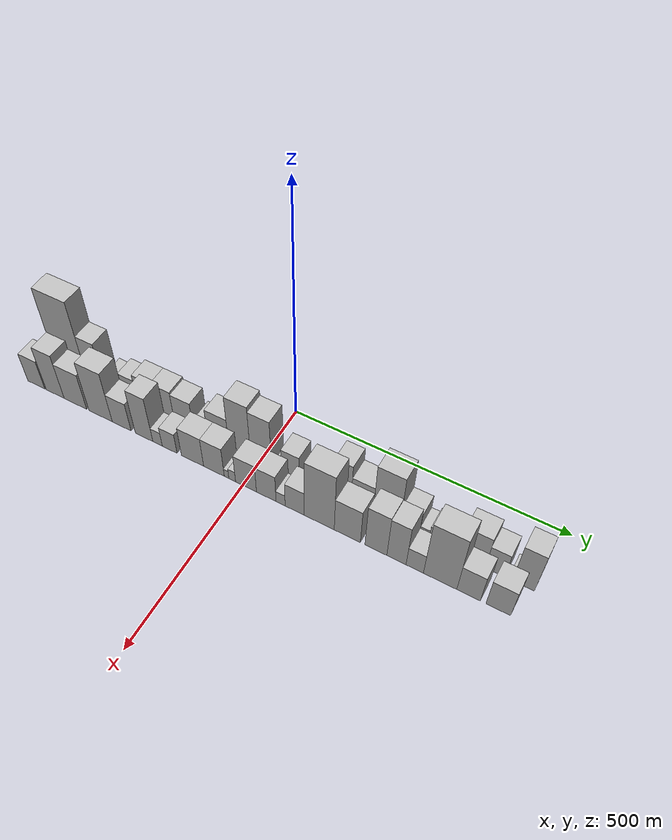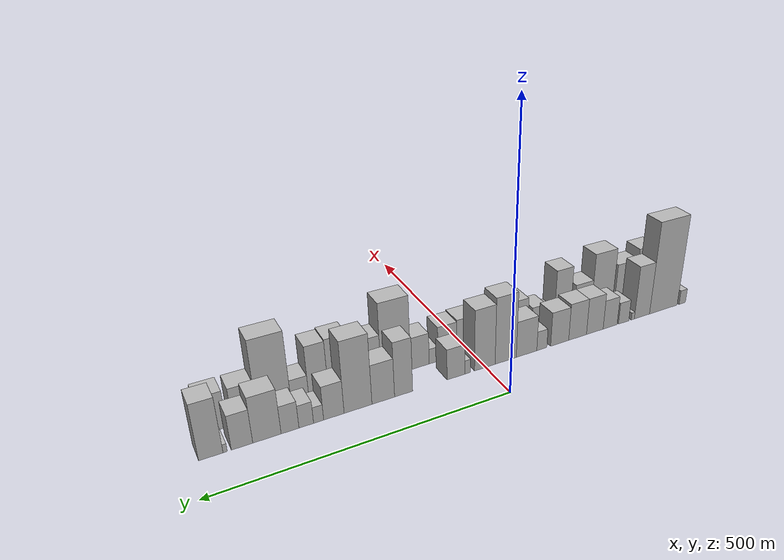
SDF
<sdf version="1.6">
 <world name="default">
  <scene>
   <sky><clouds><speed>12</speed></clouds></sky>
   <ambient>0.4 0.4 0.4 1</ambient>
   <background>0.7 0.7 0.7 1</background>
   <shadows>1</shadows>
  </scene>
  <gravity>0 0 -9.8066</gravity>
  <magnetic_field>6e-06 2.3e-05 -4.2e-05</magnetic_field>
  <physics default="0" name="default_physics" type="ode">
   <ode>
    <solver>
     <type>quick</type>
     <iters>10</iters>
     <sor>1.0</sor>
     <use_dynamic_moi_rescaling>0</use_dynamic_moi_rescaling>
    </solver>
    <constraints>
     <cfm>0</cfm>
     <erp>0.2</erp>
     <contact_max_correcting_vel>100</contact_max_correcting_vel>
     <contact_surface_layer>0.001</contact_surface_layer>
    </constraints>
   </ode>
   <max_step_size>0.004</max_step_size>
   <real_time_factor>1</real_time_factor>
   <real_time_update_rate>250</real_time_update_rate>
  </physics>
  <light name="sun" type="directional">
   <pose>0 0 10 0 0 0</pose>
   <diffuse>0.8 0.8 0.8 1</diffuse>
   <specular>0.2 0.2 0.2 1</specular>
   <attenuation>
    <range>1000</range>
    <constant>0.9</constant>
    <linear>0.01</linear>
    <quadratic>0.001</quadratic>
   </attenuation>
   <direction>-0.5 0.1 -0.9</direction>
  </light>
  <model name="building_1">
   <static>1</static>
   <pose>100.0000 -441.8809 0 0.000000 0.000000 0.000000</pose>
   <link name="link">
    <pose>0 0 15.00 0 0 0</pose>
    <collision name="collision"><geometry><box><size>40.0000 16.2383 30.0000</size></box></geometry></collision>
    <visual name="visual">
     <cast_shadows>0</cast_shadows>
     <geometry><box><size>40.0000 16.2383 30.0000</size></box></geometry>
     <material>
      <script>
       <uri>model://HANNAS_wall/materials/scripts</uri>
       <uri>model://HANNAS_wall/materials/textures</uri>
       <name>vrc/HANNAS_wall</name>
      </script>
     </material>
    </visual>
   </link>
  </model>
  <model name="building_2">
   <static>1</static>
   <pose>100.0000 -394.4382 0 0.000000 0.000000 0.000000</pose>
   <link name="link">
    <pose>0 0 96.00 0 0 0</pose>
    <collision name="collision"><geometry><box><size>40.0000 68.6470 192.0000</size></box></geometry></collision>
    <visual name="visual">
     <cast_shadows>0</cast_shadows>
     <geometry><box><size>40.0000 68.6470 192.0000</size></box></geometry>
     <material>
      <script>
       <uri>model://HANNAS_wall/materials/scripts</uri>
       <uri>model://HANNAS_wall/materials/textures</uri>
       <name>vrc/HANNAS_wall</name>
      </script>
     </material>
    </visual>
   </link>
  </model>
  <model name="building_3">
   <static>1</static>
   <pose>100.0000 -341.8389 0 0.000000 0.000000 0.000000</pose>
   <link name="link">
    <pose>0 0 55.50 0 0 0</pose>
    <collision name="collision"><geometry><box><size>40.0000 36.5518 111.0000</size></box></geometry></collision>
    <visual name="visual">
     <cast_shadows>0</cast_shadows>
     <geometry><box><size>40.0000 36.5518 111.0000</size></box></geometry>
     <material>
      <script>
       <uri>model://HANNAS_wall/materials/scripts</uri>
       <uri>model://HANNAS_wall/materials/textures</uri>
       <name>vrc/HANNAS_wall</name>
      </script>
     </material>
    </visual>
   </link>
  </model>
  <model name="building_4">
   <static>1</static>
   <pose>100.0000 -319.9382 0 0.000000 0.000000 0.000000</pose>
   <link name="link">
    <pose>0 0 7.50 0 0 0</pose>
    <collision name="collision"><geometry><box><size>40.0000 7.2495 15.0000</size></box></geometry></collision>
    <visual name="visual">
     <cast_shadows>0</cast_shadows>
     <geometry><box><size>40.0000 7.2495 15.0000</size></box></geometry>
     <material>
      <script>
       <uri>model://HANNAS_wall/materials/scripts</uri>
       <uri>model://HANNAS_wall/materials/textures</uri>
       <name>vrc/HANNAS_wall</name>
      </script>
     </material>
    </visual>
   </link>
  </model>
  <model name="building_5">
   <static>1</static>
   <pose>100.0000 -298.1043 0 0.000000 0.000000 0.000000</pose>
   <link name="link">
    <pose>0 0 22.50 0 0 0</pose>
    <collision name="collision"><geometry><box><size>40.0000 24.4184 45.0000</size></box></geometry></collision>
    <visual name="visual">
     <cast_shadows>0</cast_shadows>
     <geometry><box><size>40.0000 24.4184 45.0000</size></box></geometry>
     <material>
      <script>
       <uri>model://HANNAS_wall/materials/scripts</uri>
       <uri>model://HANNAS_wall/materials/textures</uri>
       <name>vrc/HANNAS_wall</name>
      </script>
     </material>
    </visual>
   </link>
  </model>
  <model name="building_6">
   <static>1</static>
   <pose>100.0000 -266.6785 0 0.000000 0.000000 0.000000</pose>
   <link name="link">
    <pose>0 0 30.00 0 0 0</pose>
    <collision name="collision"><geometry><box><size>40.0000 32.4332 60.0000</size></box></geometry></collision>
    <visual name="visual">
     <cast_shadows>0</cast_shadows>
     <geometry><box><size>40.0000 32.4332 60.0000</size></box></geometry>
     <material>
      <script>
       <uri>model://HANNAS_wall/materials/scripts</uri>
       <uri>model://HANNAS_wall/materials/textures</uri>
       <name>vrc/HANNAS_wall</name>
      </script>
     </material>
    </visual>
   </link>
  </model>
  <model name="building_7">
   <static>1</static>
   <pose>100.0000 -231.5800 0 0.000000 0.000000 0.000000</pose>
   <link name="link">
    <pose>0 0 37.50 0 0 0</pose>
    <collision name="collision"><geometry><box><size>40.0000 37.7637 75.0000</size></box></geometry></collision>
    <visual name="visual">
     <cast_shadows>0</cast_shadows>
     <geometry><box><size>40.0000 37.7637 75.0000</size></box></geometry>
     <material>
      <script>
       <uri>model://HANNAS_wall/materials/scripts</uri>
       <uri>model://HANNAS_wall/materials/textures</uri>
       <name>vrc/HANNAS_wall</name>
      </script>
     </material>
    </visual>
   </link>
  </model>
  <model name="building_8">
   <static>1</static>
   <pose>100.0000 -192.9795 0 0.000000 0.000000 0.000000</pose>
   <link name="link">
    <pose>0 0 37.50 0 0 0</pose>
    <collision name="collision"><geometry><box><size>40.0000 39.4374 75.0000</size></box></geometry></collision>
    <visual name="visual">
     <cast_shadows>0</cast_shadows>
     <geometry><box><size>40.0000 39.4374 75.0000</size></box></geometry>
     <material>
      <script>
       <uri>model://HANNAS_wall/materials/scripts</uri>
       <uri>model://HANNAS_wall/materials/textures</uri>
       <name>vrc/HANNAS_wall</name>
      </script>
     </material>
    </visual>
   </link>
  </model>
  <model name="building_9">
   <static>1</static>
   <pose>100.0000 -153.6792 0 0.000000 0.000000 0.000000</pose>
   <link name="link">
    <pose>0 0 34.50 0 0 0</pose>
    <collision name="collision"><geometry><box><size>40.0000 39.1631 69.0000</size></box></geometry></collision>
    <visual name="visual">
     <cast_shadows>0</cast_shadows>
     <geometry><box><size>40.0000 39.1631 69.0000</size></box></geometry>
     <material>
      <script>
       <uri>model://HANNAS_wall/materials/scripts</uri>
       <uri>model://HANNAS_wall/materials/textures</uri>
       <name>vrc/HANNAS_wall</name>
      </script>
     </material>
    </visual>
   </link>
  </model>
  <model name="building_10">
   <static>1</static>
   <pose>100.0000 -115.4323 0 0.000000 0.000000 0.000000</pose>
   <link name="link">
    <pose>0 0 19.50 0 0 0</pose>
    <collision name="collision"><geometry><box><size>40.0000 21.3307 39.0000</size></box></geometry></collision>
    <visual name="visual">
     <cast_shadows>0</cast_shadows>
     <geometry><box><size>40.0000 21.3307 39.0000</size></box></geometry>
     <material>
      <script>
       <uri>model://HANNAS_wall/materials/scripts</uri>
       <uri>model://HANNAS_wall/materials/textures</uri>
       <name>vrc/HANNAS_wall</name>
      </script>
     </material>
    </visual>
   </link>
  </model>
  <model name="building_11">
   <static>1</static>
   <pose>100.0000 -83.3912 0 0.000000 0.000000 0.000000</pose>
   <link name="link">
    <pose>0 0 36.00 0 0 0</pose>
    <collision name="collision"><geometry><box><size>40.0000 42.7514 72.0000</size></box></geometry></collision>
    <visual name="visual">
     <cast_shadows>0</cast_shadows>
     <geometry><box><size>40.0000 42.7514 72.0000</size></box></geometry>
     <material>
      <script>
       <uri>model://HANNAS_wall/materials/scripts</uri>
       <uri>model://HANNAS_wall/materials/textures</uri>
       <name>vrc/HANNAS_wall</name>
      </script>
     </material>
    </visual>
   </link>
  </model>
  <model name="building_12">
   <static>1</static>
   <pose>100.0000 -40.5766 0 0.000000 0.000000 0.000000</pose>
   <link name="link">
    <pose>0 0 66.00 0 0 0</pose>
    <collision name="collision"><geometry><box><size>40.0000 42.8779 132.0000</size></box></geometry></collision>
    <visual name="visual">
     <cast_shadows>0</cast_shadows>
     <geometry><box><size>40.0000 42.8779 132.0000</size></box></geometry>
     <material>
      <script>
       <uri>model://HANNAS_wall/materials/scripts</uri>
       <uri>model://HANNAS_wall/materials/textures</uri>
       <name>vrc/HANNAS_wall</name>
      </script>
     </material>
    </visual>
   </link>
  </model>
  <model name="building_13">
   <static>1</static>
   <pose>100.0000 1.1690 0 0.000000 0.000000 0.000000</pose>
   <link name="link">
    <pose>0 0 60.00 0 0 0</pose>
    <collision name="collision"><geometry><box><size>40.0000 40.6133 120.0000</size></box></geometry></collision>
    <visual name="visual">
     <cast_shadows>0</cast_shadows>
     <geometry><box><size>40.0000 40.6133 120.0000</size></box></geometry>
     <material>
      <script>
       <uri>model://HANNAS_wall/materials/scripts</uri>
       <uri>model://HANNAS_wall/materials/textures</uri>
       <name>vrc/HANNAS_wall</name>
      </script>
     </material>
    </visual>
   </link>
  </model>
  <model name="building_14">
   <static>1</static>
   <pose>100.0000 34.9292 0 0.000000 0.000000 0.000000</pose>
   <link name="link">
    <pose>0 0 13.50 0 0 0</pose>
    <collision name="collision"><geometry><box><size>40.0000 10.9072 27.0000</size></box></geometry></collision>
    <visual name="visual">
     <cast_shadows>0</cast_shadows>
     <geometry><box><size>40.0000 10.9072 27.0000</size></box></geometry>
     <material>
      <script>
       <uri>model://HANNAS_wall/materials/scripts</uri>
       <uri>model://HANNAS_wall/materials/textures</uri>
       <name>vrc/HANNAS_wall</name>
      </script>
     </material>
    </visual>
   </link>
  </model>
  <model name="building_15">
   <static>1</static>
   <pose>100.0000 57.2827 0 0.000000 0.000000 0.000000</pose>
   <link name="link">
    <pose>0 0 30.00 0 0 0</pose>
    <collision name="collision"><geometry><box><size>40.0000 33.7997 60.0000</size></box></geometry></collision>
    <visual name="visual">
     <cast_shadows>0</cast_shadows>
     <geometry><box><size>40.0000 33.7997 60.0000</size></box></geometry>
     <material>
      <script>
       <uri>model://HANNAS_wall/materials/scripts</uri>
       <uri>model://HANNAS_wall/materials/textures</uri>
       <name>vrc/HANNAS_wall</name>
      </script>
     </material>
    </visual>
   </link>
  </model>
  <model name="building_16">
   <static>1</static>
   <pose>100.0000 153.9141 0 0.000000 0.000000 0.000000</pose>
   <link name="link">
    <pose>0 0 52.50 0 0 0</pose>
    <collision name="collision"><geometry><box><size>40.0000 32.4877 105.0000</size></box></geometry></collision>
    <visual name="visual">
     <cast_shadows>0</cast_shadows>
     <geometry><box><size>40.0000 32.4877 105.0000</size></box></geometry>
     <material>
      <script>
       <uri>model://HANNAS_wall/materials/scripts</uri>
       <uri>model://HANNAS_wall/materials/textures</uri>
       <name>vrc/HANNAS_wall</name>
      </script>
     </material>
    </visual>
   </link>
  </model>
  <model name="building_17">
   <static>1</static>
   <pose>100.0000 189.9564 0 0.000000 0.000000 0.000000</pose>
   <link name="link">
    <pose>0 0 37.50 0 0 0</pose>
    <collision name="collision"><geometry><box><size>40.0000 39.5969 75.0000</size></box></geometry></collision>
    <visual name="visual">
     <cast_shadows>0</cast_shadows>
     <geometry><box><size>40.0000 39.5969 75.0000</size></box></geometry>
     <material>
      <script>
       <uri>model://HANNAS_wall/materials/scripts</uri>
       <uri>model://HANNAS_wall/materials/textures</uri>
       <name>vrc/HANNAS_wall</name>
      </script>
     </material>
    </visual>
   </link>
  </model>
  <model name="building_18">
   <static>1</static>
   <pose>100.0000 233.4848 0 0.000000 0.000000 0.000000</pose>
   <link name="link">
    <pose>0 0 67.50 0 0 0</pose>
    <collision name="collision"><geometry><box><size>40.0000 47.4599 135.0000</size></box></geometry></collision>
    <visual name="visual">
     <cast_shadows>0</cast_shadows>
     <geometry><box><size>40.0000 47.4599 135.0000</size></box></geometry>
     <material>
      <script>
       <uri>model://HANNAS_wall/materials/scripts</uri>
       <uri>model://HANNAS_wall/materials/textures</uri>
       <name>vrc/HANNAS_wall</name>
      </script>
     </material>
    </visual>
   </link>
  </model>
  <model name="building_19">
   <static>1</static>
   <pose>100.0000 274.1606 0 0.000000 0.000000 0.000000</pose>
   <link name="link">
    <pose>0 0 31.50 0 0 0</pose>
    <collision name="collision"><geometry><box><size>40.0000 33.8915 63.0000</size></box></geometry></collision>
    <visual name="visual">
     <cast_shadows>0</cast_shadows>
     <geometry><box><size>40.0000 33.8915 63.0000</size></box></geometry>
     <material>
      <script>
       <uri>model://HANNAS_wall/materials/scripts</uri>
       <uri>model://HANNAS_wall/materials/textures</uri>
       <name>vrc/HANNAS_wall</name>
      </script>
     </material>
    </visual>
   </link>
  </model>
  <model name="building_20">
   <static>1</static>
   <pose>100.0000 299.3022 0 0.000000 0.000000 0.000000</pose>
   <link name="link">
    <pose>0 0 15.00 0 0 0</pose>
    <collision name="collision"><geometry><box><size>40.0000 16.3916 30.0000</size></box></geometry></collision>
    <visual name="visual">
     <cast_shadows>0</cast_shadows>
     <geometry><box><size>40.0000 16.3916 30.0000</size></box></geometry>
     <material>
      <script>
       <uri>model://HANNAS_wall/materials/scripts</uri>
       <uri>model://HANNAS_wall/materials/textures</uri>
       <name>vrc/HANNAS_wall</name>
      </script>
     </material>
    </visual>
   </link>
  </model>
  <model name="building_21">
   <static>1</static>
   <pose>100.0000 319.2387 0 0.000000 0.000000 0.000000</pose>
   <link name="link">
    <pose>0 0 21.00 0 0 0</pose>
    <collision name="collision"><geometry><box><size>40.0000 23.4814 42.0000</size></box></geometry></collision>
    <visual name="visual">
     <cast_shadows>0</cast_shadows>
     <geometry><box><size>40.0000 23.4814 42.0000</size></box></geometry>
     <material>
      <script>
       <uri>model://HANNAS_wall/materials/scripts</uri>
       <uri>model://HANNAS_wall/materials/textures</uri>
       <name>vrc/HANNAS_wall</name>
      </script>
     </material>
    </visual>
   </link>
  </model>
  <model name="building_22">
   <static>1</static>
   <pose>100.0000 345.0487 0 0.000000 0.000000 0.000000</pose>
   <link name="link">
    <pose>0 0 25.50 0 0 0</pose>
    <collision name="collision"><geometry><box><size>40.0000 28.1386 51.0000</size></box></geometry></collision>
    <visual name="visual">
     <cast_shadows>0</cast_shadows>
     <geometry><box><size>40.0000 28.1386 51.0000</size></box></geometry>
     <material>
      <script>
       <uri>model://HANNAS_wall/materials/scripts</uri>
       <uri>model://HANNAS_wall/materials/textures</uri>
       <name>vrc/HANNAS_wall</name>
      </script>
     </material>
    </visual>
   </link>
  </model>
  <model name="building_23">
   <static>1</static>
   <pose>100.0000 380.9719 0 0.000000 0.000000 0.000000</pose>
   <link name="link">
    <pose>0 0 42.00 0 0 0</pose>
    <collision name="collision"><geometry><box><size>40.0000 43.7077 84.0000</size></box></geometry></collision>
    <visual name="visual">
     <cast_shadows>0</cast_shadows>
     <geometry><box><size>40.0000 43.7077 84.0000</size></box></geometry>
     <material>
      <script>
       <uri>model://HANNAS_wall/materials/scripts</uri>
       <uri>model://HANNAS_wall/materials/textures</uri>
       <name>vrc/HANNAS_wall</name>
      </script>
     </material>
    </visual>
   </link>
  </model>
  <model name="building_24">
   <static>1</static>
   <pose>100.0000 418.9045 0 0.000000 0.000000 0.000000</pose>
   <link name="link">
    <pose>0 0 31.50 0 0 0</pose>
    <collision name="collision"><geometry><box><size>40.0000 32.1575 63.0000</size></box></geometry></collision>
    <visual name="visual">
     <cast_shadows>0</cast_shadows>
     <geometry><box><size>40.0000 32.1575 63.0000</size></box></geometry>
     <material>
      <script>
       <uri>model://HANNAS_wall/materials/scripts</uri>
       <uri>model://HANNAS_wall/materials/textures</uri>
       <name>vrc/HANNAS_wall</name>
      </script>
     </material>
    </visual>
   </link>
  </model>
  <model name="building_25">
   <static>1</static>
   <pose>100.0000 444.1116 0 0.000000 0.000000 0.000000</pose>
   <link name="link">
    <pose>0 0 7.50 0 0 0</pose>
    <collision name="collision"><geometry><box><size>40.0000 6.2568 15.0000</size></box></geometry></collision>
    <visual name="visual">
     <cast_shadows>0</cast_shadows>
     <geometry><box><size>40.0000 6.2568 15.0000</size></box></geometry>
     <material>
      <script>
       <uri>model://HANNAS_wall/materials/scripts</uri>
       <uri>model://HANNAS_wall/materials/textures</uri>
       <name>vrc/HANNAS_wall</name>
      </script>
     </material>
    </visual>
   </link>
  </model>
  <model name="building_26">
   <static>1</static>
   <pose>100.0000 465.0270 0 0.000000 0.000000 0.000000</pose>
   <link name="link">
    <pose>0 0 51.00 0 0 0</pose>
    <collision name="collision"><geometry><box><size>40.0000 35.5739 102.0000</size></box></geometry></collision>
    <visual name="visual">
     <cast_shadows>0</cast_shadows>
     <geometry><box><size>40.0000 35.5739 102.0000</size></box></geometry>
     <material>
      <script>
       <uri>model://HANNAS_wall/materials/scripts</uri>
       <uri>model://HANNAS_wall/materials/textures</uri>
       <name>vrc/HANNAS_wall</name>
      </script>
     </material>
    </visual>
   </link>
  </model>
  <model name="building_27">
   <static>1</static>
   <pose>155.0000 -430.8123 0 0.000000 0.000000 0.000000</pose>
   <link name="link">
    <pose>0 0 36.00 0 0 0</pose>
    <collision name="collision"><geometry><box><size>40.0000 38.3755 72.0000</size></box></geometry></collision>
    <visual name="visual">
     <cast_shadows>0</cast_shadows>
     <geometry><box><size>40.0000 38.3755 72.0000</size></box></geometry>
     <material>
      <script>
       <uri>model://HANNAS_wall/materials/scripts</uri>
       <uri>model://HANNAS_wall/materials/textures</uri>
       <name>vrc/HANNAS_wall</name>
      </script>
     </material>
    </visual>
   </link>
  </model>
  <model name="building_28">
   <static>1</static>
   <pose>155.0000 -388.5413 0 0.000000 0.000000 0.000000</pose>
   <link name="link">
    <pose>0 0 55.50 0 0 0</pose>
    <collision name="collision"><geometry><box><size>40.0000 40.1666 111.0000</size></box></geometry></collision>
    <visual name="visual">
     <cast_shadows>0</cast_shadows>
     <geometry><box><size>40.0000 40.1666 111.0000</size></box></geometry>
     <material>
      <script>
       <uri>model://HANNAS_wall/materials/scripts</uri>
       <uri>model://HANNAS_wall/materials/textures</uri>
       <name>vrc/HANNAS_wall</name>
      </script>
     </material>
    </visual>
   </link>
  </model>
  <model name="building_29">
   <static>1</static>
   <pose>155.0000 -343.8011 0 0.000000 0.000000 0.000000</pose>
   <link name="link">
    <pose>0 0 45.00 0 0 0</pose>
    <collision name="collision"><geometry><box><size>40.0000 49.3137 90.0000</size></box></geometry></collision>
    <visual name="visual">
     <cast_shadows>0</cast_shadows>
     <geometry><box><size>40.0000 49.3137 90.0000</size></box></geometry>
     <material>
      <script>
       <uri>model://HANNAS_wall/materials/scripts</uri>
       <uri>model://HANNAS_wall/materials/textures</uri>
       <name>vrc/HANNAS_wall</name>
      </script>
     </material>
    </visual>
   </link>
  </model>
  <model name="building_30">
   <static>1</static>
   <pose>155.0000 -289.1457 0 0.000000 0.000000 0.000000</pose>
   <link name="link">
    <pose>0 0 63.00 0 0 0</pose>
    <collision name="collision"><geometry><box><size>40.0000 49.9972 126.0000</size></box></geometry></collision>
    <visual name="visual">
     <cast_shadows>0</cast_shadows>
     <geometry><box><size>40.0000 49.9972 126.0000</size></box></geometry>
     <material>
      <script>
       <uri>model://HANNAS_wall/materials/scripts</uri>
       <uri>model://HANNAS_wall/materials/textures</uri>
       <name>vrc/HANNAS_wall</name>
      </script>
     </material>
    </visual>
   </link>
  </model>
  <model name="building_31">
   <static>1</static>
   <pose>155.0000 -244.2828 0 0.000000 0.000000 0.000000</pose>
   <link name="link">
    <pose>0 0 36.00 0 0 0</pose>
    <collision name="collision"><geometry><box><size>40.0000 39.7285 72.0000</size></box></geometry></collision>
    <visual name="visual">
     <cast_shadows>0</cast_shadows>
     <geometry><box><size>40.0000 39.7285 72.0000</size></box></geometry>
     <material>
      <script>
       <uri>model://HANNAS_wall/materials/scripts</uri>
       <uri>model://HANNAS_wall/materials/textures</uri>
       <name>vrc/HANNAS_wall</name>
      </script>
     </material>
    </visual>
   </link>
  </model>
  <model name="building_32">
   <static>1</static>
   <pose>155.0000 -197.2250 0 0.000000 0.000000 0.000000</pose>
   <link name="link">
    <pose>0 0 57.00 0 0 0</pose>
    <collision name="collision"><geometry><box><size>40.0000 36.3873 114.0000</size></box></geometry></collision>
    <visual name="visual">
     <cast_shadows>0</cast_shadows>
     <geometry><box><size>40.0000 36.3873 114.0000</size></box></geometry>
     <material>
      <script>
       <uri>model://HANNAS_wall/materials/scripts</uri>
       <uri>model://HANNAS_wall/materials/textures</uri>
       <name>vrc/HANNAS_wall</name>
      </script>
     </material>
    </visual>
   </link>
  </model>
  <model name="building_33">
   <static>1</static>
   <pose>155.0000 -169.4096 0 0.000000 0.000000 0.000000</pose>
   <link name="link">
    <pose>0 0 18.00 0 0 0</pose>
    <collision name="collision"><geometry><box><size>40.0000 19.2435 36.0000</size></box></geometry></collision>
    <visual name="visual">
     <cast_shadows>0</cast_shadows>
     <geometry><box><size>40.0000 19.2435 36.0000</size></box></geometry>
     <material>
      <script>
       <uri>model://HANNAS_wall/materials/scripts</uri>
       <uri>model://HANNAS_wall/materials/textures</uri>
       <name>vrc/HANNAS_wall</name>
      </script>
     </material>
    </visual>
   </link>
  </model>
  <model name="building_34">
   <static>1</static>
   <pose>155.0000 -144.7755 0 0.000000 0.000000 0.000000</pose>
   <link name="link">
    <pose>0 0 25.50 0 0 0</pose>
    <collision name="collision"><geometry><box><size>40.0000 30.0247 51.0000</size></box></geometry></collision>
    <visual name="visual">
     <cast_shadows>0</cast_shadows>
     <geometry><box><size>40.0000 30.0247 51.0000</size></box></geometry>
     <material>
      <script>
       <uri>model://HANNAS_wall/materials/scripts</uri>
       <uri>model://HANNAS_wall/materials/textures</uri>
       <name>vrc/HANNAS_wall</name>
      </script>
     </material>
    </visual>
   </link>
  </model>
  <model name="building_35">
   <static>1</static>
   <pose>155.0000 -98.7271 0 0.000000 0.000000 0.000000</pose>
   <link name="link">
    <pose>0 0 37.50 0 0 0</pose>
    <collision name="collision"><geometry><box><size>40.0000 44.0722 75.0000</size></box></geometry></collision>
    <visual name="visual">
     <cast_shadows>0</cast_shadows>
     <geometry><box><size>40.0000 44.0722 75.0000</size></box></geometry>
     <material>
      <script>
       <uri>model://HANNAS_wall/materials/scripts</uri>
       <uri>model://HANNAS_wall/materials/textures</uri>
       <name>vrc/HANNAS_wall</name>
      </script>
     </material>
    </visual>
   </link>
  </model>
  <model name="building_36">
   <static>1</static>
   <pose>155.0000 -56.4017 0 0.000000 0.000000 0.000000</pose>
   <link name="link">
    <pose>0 0 37.50 0 0 0</pose>
    <collision name="collision"><geometry><box><size>40.0000 40.5786 75.0000</size></box></geometry></collision>
    <visual name="visual">
     <cast_shadows>0</cast_shadows>
     <geometry><box><size>40.0000 40.5786 75.0000</size></box></geometry>
     <material>
      <script>
       <uri>model://HANNAS_wall/materials/scripts</uri>
       <uri>model://HANNAS_wall/materials/textures</uri>
       <name>vrc/HANNAS_wall</name>
      </script>
     </material>
    </visual>
   </link>
  </model>
  <model name="building_37">
   <static>1</static>
   <pose>155.0000 -31.6919 0 0.000000 0.000000 0.000000</pose>
   <link name="link">
    <pose>0 0 10.50 0 0 0</pose>
    <collision name="collision"><geometry><box><size>40.0000 8.8409 21.0000</size></box></geometry></collision>
    <visual name="visual">
     <cast_shadows>0</cast_shadows>
     <geometry><box><size>40.0000 8.8409 21.0000</size></box></geometry>
     <material>
      <script>
       <uri>model://HANNAS_wall/materials/scripts</uri>
       <uri>model://HANNAS_wall/materials/textures</uri>
       <name>vrc/HANNAS_wall</name>
      </script>
     </material>
    </visual>
   </link>
  </model>
  <model name="building_38">
   <static>1</static>
   <pose>155.0000 -20.7111 0 0.000000 0.000000 0.000000</pose>
   <link name="link">
    <pose>0 0 13.50 0 0 0</pose>
    <collision name="collision"><geometry><box><size>40.0000 13.1206 27.0000</size></box></geometry></collision>
    <visual name="visual">
     <cast_shadows>0</cast_shadows>
     <geometry><box><size>40.0000 13.1206 27.0000</size></box></geometry>
     <material>
      <script>
       <uri>model://HANNAS_wall/materials/scripts</uri>
       <uri>model://HANNAS_wall/materials/textures</uri>
       <name>vrc/HANNAS_wall</name>
      </script>
     </material>
    </visual>
   </link>
  </model>
  <model name="building_39">
   <static>1</static>
   <pose>155.0000 5.8665 0 0.000000 0.000000 0.000000</pose>
   <link name="link">
    <pose>0 0 36.00 0 0 0</pose>
    <collision name="collision"><geometry><box><size>40.0000 40.0348 72.0000</size></box></geometry></collision>
    <visual name="visual">
     <cast_shadows>0</cast_shadows>
     <geometry><box><size>40.0000 40.0348 72.0000</size></box></geometry>
     <material>
      <script>
       <uri>model://HANNAS_wall/materials/scripts</uri>
       <uri>model://HANNAS_wall/materials/textures</uri>
       <name>vrc/HANNAS_wall</name>
      </script>
     </material>
    </visual>
   </link>
  </model>
  <model name="building_40">
   <static>1</static>
   <pose>155.0000 44.3310 0 0.000000 0.000000 0.000000</pose>
   <link name="link">
    <pose>0 0 34.50 0 0 0</pose>
    <collision name="collision"><geometry><box><size>40.0000 36.8942 69.0000</size></box></geometry></collision>
    <visual name="visual">
     <cast_shadows>0</cast_shadows>
     <geometry><box><size>40.0000 36.8942 69.0000</size></box></geometry>
     <material>
      <script>
       <uri>model://HANNAS_wall/materials/scripts</uri>
       <uri>model://HANNAS_wall/materials/textures</uri>
       <name>vrc/HANNAS_wall</name>
      </script>
     </material>
    </visual>
   </link>
  </model>
  <model name="building_41">
   <static>1</static>
   <pose>155.0000 71.2959 0 0.000000 0.000000 0.000000</pose>
   <link name="link">
    <pose>0 0 15.00 0 0 0</pose>
    <collision name="collision"><geometry><box><size>40.0000 17.0355 30.0000</size></box></geometry></collision>
    <visual name="visual">
     <cast_shadows>0</cast_shadows>
     <geometry><box><size>40.0000 17.0355 30.0000</size></box></geometry>
     <material>
      <script>
       <uri>model://HANNAS_wall/materials/scripts</uri>
       <uri>model://HANNAS_wall/materials/textures</uri>
       <name>vrc/HANNAS_wall</name>
      </script>
     </material>
    </visual>
   </link>
  </model>
  <model name="building_42">
   <static>1</static>
   <pose>155.0000 97.4309 0 0.000000 0.000000 0.000000</pose>
   <link name="link">
    <pose>0 0 31.50 0 0 0</pose>
    <collision name="collision"><geometry><box><size>40.0000 35.2345 63.0000</size></box></geometry></collision>
    <visual name="visual">
     <cast_shadows>0</cast_shadows>
     <geometry><box><size>40.0000 35.2345 63.0000</size></box></geometry>
     <material>
      <script>
       <uri>model://HANNAS_wall/materials/scripts</uri>
       <uri>model://HANNAS_wall/materials/textures</uri>
       <name>vrc/HANNAS_wall</name>
      </script>
     </material>
    </visual>
   </link>
  </model>
  <model name="building_43">
   <static>1</static>
   <pose>155.0000 142.2463 0 0.000000 0.000000 0.000000</pose>
   <link name="link">
    <pose>0 0 73.50 0 0 0</pose>
    <collision name="collision"><geometry><box><size>40.0000 54.3964 147.0000</size></box></geometry></collision>
    <visual name="visual">
     <cast_shadows>0</cast_shadows>
     <geometry><box><size>40.0000 54.3964 147.0000</size></box></geometry>
     <material>
      <script>
       <uri>model://HANNAS_wall/materials/scripts</uri>
       <uri>model://HANNAS_wall/materials/textures</uri>
       <name>vrc/HANNAS_wall</name>
      </script>
     </material>
    </visual>
   </link>
  </model>
  <model name="building_44">
   <static>1</static>
   <pose>155.0000 192.6951 0 0.000000 0.000000 0.000000</pose>
   <link name="link">
    <pose>0 0 43.50 0 0 0</pose>
    <collision name="collision"><geometry><box><size>40.0000 46.5011 87.0000</size></box></geometry></collision>
    <visual name="visual">
     <cast_shadows>0</cast_shadows>
     <geometry><box><size>40.0000 46.5011 87.0000</size></box></geometry>
     <material>
      <script>
       <uri>model://HANNAS_wall/materials/scripts</uri>
       <uri>model://HANNAS_wall/materials/textures</uri>
       <name>vrc/HANNAS_wall</name>
      </script>
     </material>
    </visual>
   </link>
  </model>
  <model name="building_45">
   <static>1</static>
   <pose>155.0000 243.0065 0 0.000000 0.000000 0.000000</pose>
   <link name="link">
    <pose>0 0 54.00 0 0 0</pose>
    <collision name="collision"><geometry><box><size>40.0000 38.1218 108.0000</size></box></geometry></collision>
    <visual name="visual">
     <cast_shadows>0</cast_shadows>
     <geometry><box><size>40.0000 38.1218 108.0000</size></box></geometry>
     <material>
      <script>
       <uri>model://HANNAS_wall/materials/scripts</uri>
       <uri>model://HANNAS_wall/materials/textures</uri>
       <name>vrc/HANNAS_wall</name>
      </script>
     </material>
    </visual>
   </link>
  </model>
  <model name="building_46">
   <static>1</static>
   <pose>155.0000 278.5282 0 0.000000 0.000000 0.000000</pose>
   <link name="link">
    <pose>0 0 52.50 0 0 0</pose>
    <collision name="collision"><geometry><box><size>40.0000 32.9216 105.0000</size></box></geometry></collision>
    <visual name="visual">
     <cast_shadows>0</cast_shadows>
     <geometry><box><size>40.0000 32.9216 105.0000</size></box></geometry>
     <material>
      <script>
       <uri>model://HANNAS_wall/materials/scripts</uri>
       <uri>model://HANNAS_wall/materials/textures</uri>
       <name>vrc/HANNAS_wall</name>
      </script>
     </material>
    </visual>
   </link>
  </model>
  <model name="building_47">
   <static>1</static>
   <pose>155.0000 309.6712 0 0.000000 0.000000 0.000000</pose>
   <link name="link">
    <pose>0 0 25.50 0 0 0</pose>
    <collision name="collision"><geometry><box><size>40.0000 29.3645 51.0000</size></box></geometry></collision>
    <visual name="visual">
     <cast_shadows>0</cast_shadows>
     <geometry><box><size>40.0000 29.3645 51.0000</size></box></geometry>
     <material>
      <script>
       <uri>model://HANNAS_wall/materials/scripts</uri>
       <uri>model://HANNAS_wall/materials/textures</uri>
       <name>vrc/HANNAS_wall</name>
      </script>
     </material>
    </visual>
   </link>
  </model>
  <model name="building_48">
   <static>1</static>
   <pose>155.0000 352.1238 0 0.000000 0.000000 0.000000</pose>
   <link name="link">
    <pose>0 0 72.00 0 0 0</pose>
    <collision name="collision"><geometry><box><size>40.0000 55.5409 144.0000</size></box></geometry></collision>
    <visual name="visual">
     <cast_shadows>0</cast_shadows>
     <geometry><box><size>40.0000 55.5409 144.0000</size></box></geometry>
     <material>
      <script>
       <uri>model://HANNAS_wall/materials/scripts</uri>
       <uri>model://HANNAS_wall/materials/textures</uri>
       <name>vrc/HANNAS_wall</name>
      </script>
     </material>
    </visual>
   </link>
  </model>
  <model name="building_49">
   <static>1</static>
   <pose>155.0000 399.0699 0 0.000000 0.000000 0.000000</pose>
   <link name="link">
    <pose>0 0 34.50 0 0 0</pose>
    <collision name="collision"><geometry><box><size>40.0000 38.3513 69.0000</size></box></geometry></collision>
    <visual name="visual">
     <cast_shadows>0</cast_shadows>
     <geometry><box><size>40.0000 38.3513 69.0000</size></box></geometry>
     <material>
      <script>
       <uri>model://HANNAS_wall/materials/scripts</uri>
       <uri>model://HANNAS_wall/materials/textures</uri>
       <name>vrc/HANNAS_wall</name>
      </script>
     </material>
    </visual>
   </link>
  </model>
  <model name="building_50">
   <static>1</static>
   <pose>155.0000 446.9899 0 0.000000 0.000000 0.000000</pose>
   <link name="link">
    <pose>0 0 34.50 0 0 0</pose>
    <collision name="collision"><geometry><box><size>40.0000 39.4888 69.0000</size></box></geometry></collision>
    <visual name="visual">
     <cast_shadows>0</cast_shadows>
     <geometry><box><size>40.0000 39.4888 69.0000</size></box></geometry>
     <material>
      <script>
       <uri>model://HANNAS_wall/materials/scripts</uri>
       <uri>model://HANNAS_wall/materials/textures</uri>
       <name>vrc/HANNAS_wall</name>
      </script>
     </material>
    </visual>
   </link>
  </model>
 </world>
</sdf>
